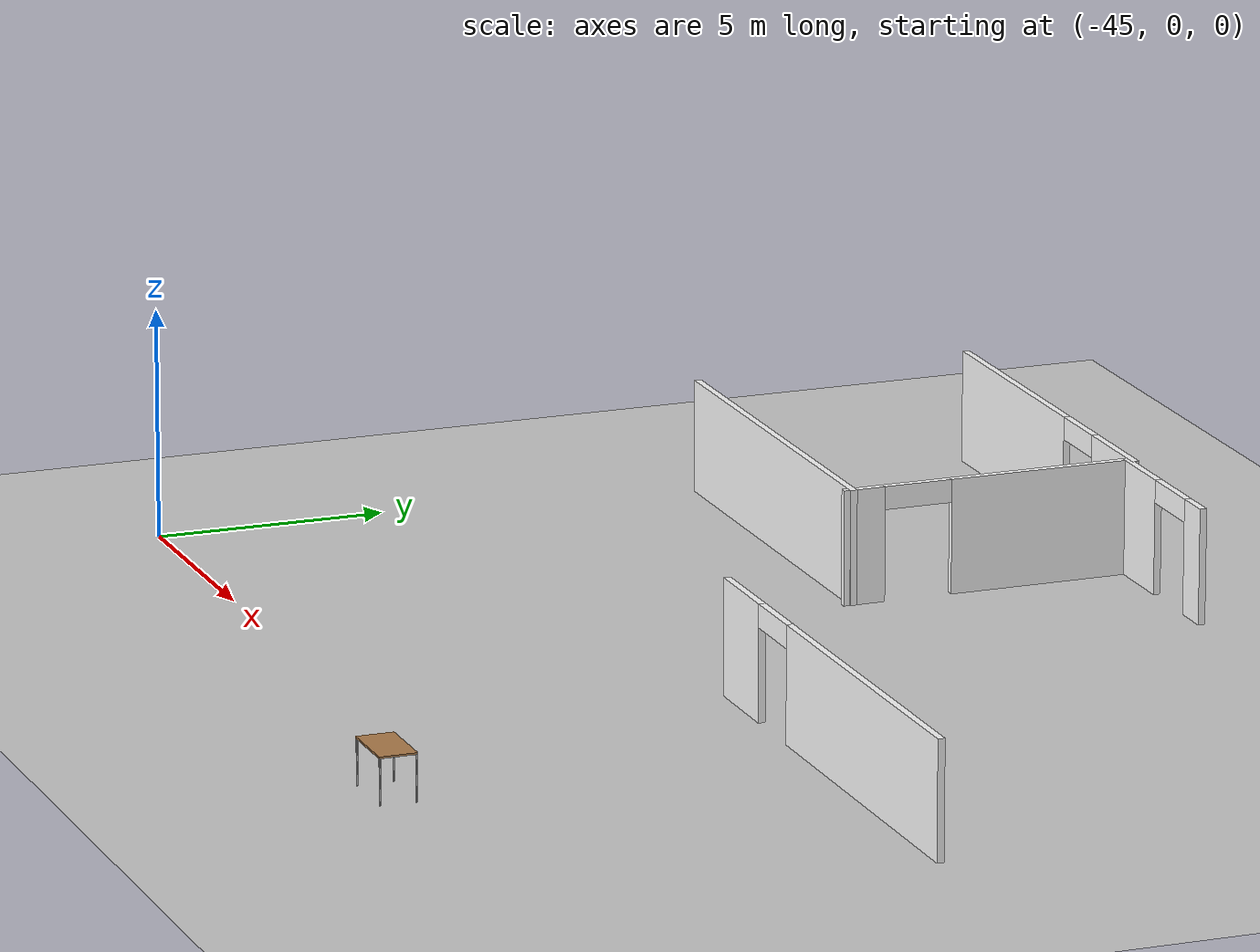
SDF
<sdf version="1.6">
 <world name="default">
  <model name="ground_plane">
   <static>1</static>
   <link name="link">
    <collision name="collision">
     <geometry><plane><normal>0 0 1</normal><size>100 100</size></plane></geometry>
     <surface><friction><ode><mu>100</mu><mu2>50</mu2></ode></friction></surface>
    </collision>
    <visual name="visual">
     <cast_shadows>0</cast_shadows>
     <geometry><plane><normal>0 0 1</normal><size>100 100</size></plane></geometry>
     <material>
      <script>
       <uri>model://office_env/materials/scripts</uri>
       <uri>model://office_env/materials/textures</uri>
       <name>wall</name>
      </script>
     </material>
    </visual>
   </link>
  </model>
  <model name="aule_N">
   <pose>0.1887 -1.4289 0 0 -0 0</pose>
   <link name="Wall_109">
    <pose>-33.4524 19.6001 0 0 -0 3.14159</pose>
    <visual name="Wall_109_Visual_0">
     <pose>-1.60516 0 1.25 0 -0 0</pose>
     <geometry><box><size>0.789669 0.15 2.5</size></box></geometry>
     <material>
      <script>
       <uri>model://office_env/materials/scripts</uri>
       <uri>model://office_env/materials/textures</uri>
       <name>wall</name>
      </script>
      <ambient>1 1 1 1</ambient>
     </material>
    </visual>
    <collision name="Wall_109_Collision_0">
     <geometry><box><size>0.789669 0.15 2.5</size></box></geometry>
     <pose>-1.60516 0 1.25 0 -0 0</pose>
    </collision>
    <visual name="Wall_109_Visual_1">
     <pose>1.14484 0 1.25 0 -0 0</pose>
     <geometry><box><size>1.71033 0.15 2.5</size></box></geometry>
     <material>
      <script>
       <uri>model://office_env/materials/scripts</uri>
       <uri>model://office_env/materials/textures</uri>
       <name>wall</name>
      </script>
      <ambient>1 1 1 1</ambient>
     </material>
    </visual>
    <collision name="Wall_109_Collision_1">
     <geometry><box><size>1.71033 0.15 2.5</size></box></geometry>
     <pose>1.14484 0 1.25 0 -0 0</pose>
    </collision>
    <visual name="Wall_109_Visual_2">
     <pose>-0.460331 0 2.25 0 -0 0</pose>
     <geometry><box><size>1.5 0.15 0.5</size></box></geometry>
     <material>
      <script>
       <uri>model://office_env/materials/scripts</uri>
       <uri>model://office_env/materials/textures</uri>
       <name>wall</name>
      </script>
      <ambient>1 1 1 1</ambient>
     </material>
    </visual>
    <collision name="Wall_109_Collision_2">
     <geometry><box><size>1.5 0.15 0.5</size></box></geometry>
     <pose>-0.460331 0 2.25 0 -0 0</pose>
    </collision>
   </link>
   <link name="Wall_110">
    <pose>-35.3774 16.4251 0 0 0 -1.5708</pose>
    <visual name="Wall_110_Visual_0">
     <pose>-1.20846 0 1.25 0 -0 0</pose>
     <geometry><box><size>4.08308 0.15 2.5</size></box></geometry>
     <material>
      <script>
       <uri>model://office_env/materials/scripts</uri>
       <uri>model://office_env/materials/textures</uri>
       <name>wall</name>
      </script>
      <ambient>1 1 1 1</ambient>
     </material>
    </visual>
    <collision name="Wall_110_Collision_0">
     <geometry><box><size>4.08308 0.15 2.5</size></box></geometry>
     <pose>-1.20846 0 1.25 0 -0 0</pose>
    </collision>
    <visual name="Wall_110_Visual_1">
     <pose>2.79154 0 1.25 0 -0 0</pose>
     <geometry><box><size>0.91692 0.15 2.5</size></box></geometry>
     <material>
      <script>
       <uri>model://office_env/materials/scripts</uri>
       <uri>model://office_env/materials/textures</uri>
       <name>wall</name>
      </script>
      <ambient>1 1 1 1</ambient>
     </material>
    </visual>
    <collision name="Wall_110_Collision_1">
     <geometry><box><size>0.91692 0.15 2.5</size></box></geometry>
     <pose>2.79154 0 1.25 0 -0 0</pose>
    </collision>
    <visual name="Wall_110_Visual_2">
     <pose>1.58308 0 2.25 0 -0 0</pose>
     <geometry><box><size>1.5 0.15 0.5</size></box></geometry>
     <material>
      <script>
       <uri>model://office_env/materials/scripts</uri>
       <uri>model://office_env/materials/textures</uri>
       <name>wall</name>
      </script>
      <ambient>1 1 1 1</ambient>
     </material>
    </visual>
    <collision name="Wall_110_Collision_2">
     <geometry><box><size>1.5 0.15 0.5</size></box></geometry>
     <pose>1.58308 0 2.25 0 -0 0</pose>
    </collision>
   </link>
   <link name="Wall_112">
    <pose>-39.7703 19.7027 0 0 -0 0</pose>
    <visual name="Wall_112_Visual_0">
     <pose>-1.82458 0 1.25 0 -0 0</pose>
     <geometry><box><size>5.60084 0.15 2.5</size></box></geometry>
     <material>
      <script>
       <uri>model://office_env/materials/scripts</uri>
       <uri>model://office_env/materials/textures</uri>
       <name>wall</name>
      </script>
      <ambient>1 1 1 1</ambient>
     </material>
    </visual>
    <collision name="Wall_112_Collision_0">
     <geometry><box><size>5.60084 0.15 2.5</size></box></geometry>
     <pose>-1.82458 0 1.25 0 -0 0</pose>
    </collision>
    <visual name="Wall_112_Visual_1">
     <pose>3.55042 0 1.25 0 -0 0</pose>
     <geometry><box><size>2.14915 0.15 2.5</size></box></geometry>
     <material>
      <script>
       <uri>model://office_env/materials/scripts</uri>
       <uri>model://office_env/materials/textures</uri>
       <name>wall</name>
      </script>
      <ambient>1 1 1 1</ambient>
     </material>
    </visual>
    <collision name="Wall_112_Collision_1">
     <geometry><box><size>2.14915 0.15 2.5</size></box></geometry>
     <pose>3.55042 0 1.25 0 -0 0</pose>
    </collision>
    <visual name="Wall_112_Visual_2">
     <pose>1.72585 0 2.25 0 -0 0</pose>
     <geometry><box><size>1.5 0.15 0.5</size></box></geometry>
     <material>
      <script>
       <uri>model://office_env/materials/scripts</uri>
       <uri>model://office_env/materials/textures</uri>
       <name>wall</name>
      </script>
      <ambient>1 1 1 1</ambient>
     </material>
    </visual>
    <collision name="Wall_112_Collision_2">
     <geometry><box><size>1.5 0.15 0.5</size></box></geometry>
     <pose>1.72585 0 2.25 0 -0 0</pose>
    </collision>
   </link>
   <link name="Wall_14">
    <collision name="Wall_14_Collision">
     <geometry><box><size>9 0.15 2.5</size></box></geometry>
     <pose>0 0 1.25 0 -0 0</pose>
    </collision>
    <visual name="Wall_14_Visual">
     <pose>0 0 1.25 0 -0 0</pose>
     <geometry><box><size>9 0.15 2.5</size></box></geometry>
     <material>
      <script>
       <uri>model://office_env/materials/scripts</uri>
       <uri>model://office_env/materials/textures</uri>
       <name>wall</name>
      </script>
      <ambient>1 1 1 1</ambient>
     </material>
    </visual>
    <pose>-39.7894 13.383 0 0 -0 0</pose>
   </link>
   <link name="Wall_60">
    <pose>-24.8555 8.68568 0 0 -0 3.14159</pose>
    <visual name="Wall_60_Visual_0">
     <pose>-1.70985 0 1.25 0 -0 0</pose>
     <geometry><box><size>7.83031 0.15 2.5</size></box></geometry>
     <material>
      <script>
       <uri>model://office_env/materials/scripts</uri>
       <uri>model://office_env/materials/textures</uri>
       <name>wall</name>
      </script>
      <ambient>1 1 1 1</ambient>
     </material>
    </visual>
    <collision name="Wall_60_Collision_0">
     <geometry><box><size>7.83031 0.15 2.5</size></box></geometry>
     <pose>-1.70985 0 1.25 0 -0 0</pose>
    </collision>
    <visual name="Wall_60_Visual_1">
     <pose>4.66516 0 1.25 0 -0 0</pose>
     <geometry><box><size>1.91969 0.15 2.5</size></box></geometry>
     <material>
      <script>
       <uri>model://office_env/materials/scripts</uri>
       <uri>model://office_env/materials/textures</uri>
       <name>wall</name>
      </script>
      <ambient>1 1 1 1</ambient>
     </material>
    </visual>
    <collision name="Wall_60_Collision_1">
     <geometry><box><size>1.91969 0.15 2.5</size></box></geometry>
     <pose>4.66516 0 1.25 0 -0 0</pose>
    </collision>
    <visual name="Wall_60_Visual_2">
     <pose>2.95531 0 2.25 0 -0 0</pose>
     <geometry><box><size>1.5 0.15 0.5</size></box></geometry>
     <material>
      <script>
       <uri>model://office_env/materials/scripts</uri>
       <uri>model://office_env/materials/textures</uri>
       <name>wall</name>
      </script>
      <ambient>1 1 1 1</ambient>
     </material>
    </visual>
    <collision name="Wall_60_Collision_2">
     <geometry><box><size>1.5 0.15 0.5</size></box></geometry>
     <pose>2.95531 0 2.25 0 -0 0</pose>
    </collision>
   </link>
   <static>1</static>
  </model>
  <model name="table_30">
   <static>0</static>
   <link name="link">
    <collision name="surface">
     <pose>0 0 1 0 -0 0</pose>
     <geometry><box><size>1.5 0.8 0.03</size></box></geometry>
     <surface><friction><ode><mu>0.6</mu><mu2>0.6</mu2></ode></friction></surface>
    </collision>
    <visual name="visual1">
     <pose>0 0 1 0 -0 0</pose>
     <geometry><box><size>1.4 0.8 0.04</size></box></geometry>
     <material>
      <script><uri>file://media/materials/scripts/gazebo.material</uri><name>Gazebo/Wood</name></script>
     </material>
    </visual>
    <collision name="front_left_leg">
     <pose>0.68 0.38 0.5 0 -0 0</pose>
     <geometry><cylinder><radius>0.02</radius><length>1</length></cylinder></geometry>
    </collision>
    <visual name="front_left_leg">
     <pose>0.68 0.38 0.5 0 -0 0</pose>
     <geometry><cylinder><radius>0.02</radius><length>1</length></cylinder></geometry>
     <material>
      <script>
       <uri>model://office_env/materials/scripts</uri>
       <uri>model://office_env/materials/textures</uri>
       <name>wall</name>
      </script>
     </material>
    </visual>
    <collision name="front_right_leg">
     <pose>0.68 -0.38 0.5 0 -0 0</pose>
     <geometry><cylinder><radius>0.02</radius><length>1</length></cylinder></geometry>
    </collision>
    <visual name="front_right_leg">
     <pose>0.68 -0.38 0.5 0 -0 0</pose>
     <geometry><cylinder><radius>0.02</radius><length>1</length></cylinder></geometry>
     <material>
      <script>
       <uri>model://office_env/materials/scripts</uri>
       <uri>model://office_env/materials/textures</uri>
       <name>wall</name>
      </script>
     </material>
    </visual>
    <collision name="back_right_leg">
     <pose>-0.68 -0.38 0.5 0 -0 0</pose>
     <geometry><cylinder><radius>0.02</radius><length>1</length></cylinder></geometry>
    </collision>
    <visual name="back_right_leg">
     <pose>-0.68 -0.38 0.5 0 -0 0</pose>
     <geometry><cylinder><radius>0.02</radius><length>1</length></cylinder></geometry>
     <material>
      <script>
       <uri>model://office_env/materials/scripts</uri>
       <uri>model://office_env/materials/textures</uri>
       <name>wall</name>
      </script>
     </material>
    </visual>
    <collision name="back_left_leg">
     <pose>-0.68 0.38 0.5 0 -0 0</pose>
     <geometry><cylinder><radius>0.02</radius><length>1</length></cylinder></geometry>
    </collision>
    <visual name="back_left_leg">
     <pose>-0.68 0.38 0.5 0 -0 0</pose>
     <geometry><cylinder><radius>0.02</radius><length>1</length></cylinder></geometry>
     <material>
      <script>
       <uri>model://office_env/materials/scripts</uri>
       <uri>model://office_env/materials/textures</uri>
       <name>wall</name>
      </script>
     </material>
    </visual>
    <inertial>
     <inertia><ixx>1</ixx><ixy>0</ixy><ixz>0</ixz><iyy>1</iyy><iyz>0</iyz><izz>1</izz></inertia>
     <mass>1</mass>
    </inertial>
   </link>
   <pose>-26.7509 -1.24912 0.009992 0 -0 0</pose>
  </model>
 </world>
</sdf>
